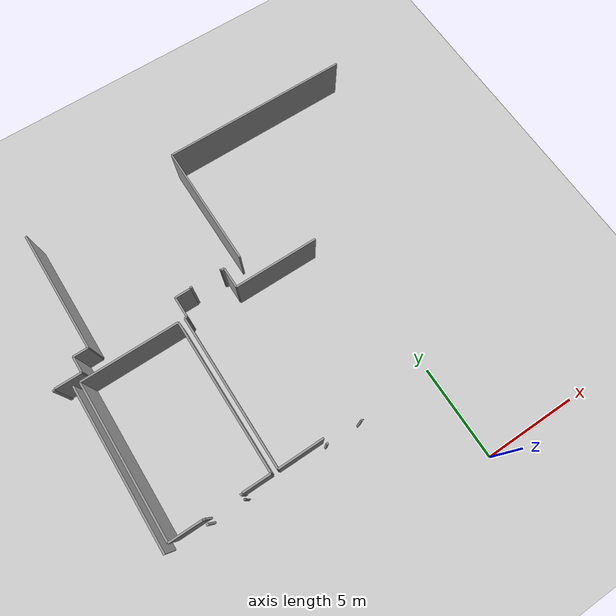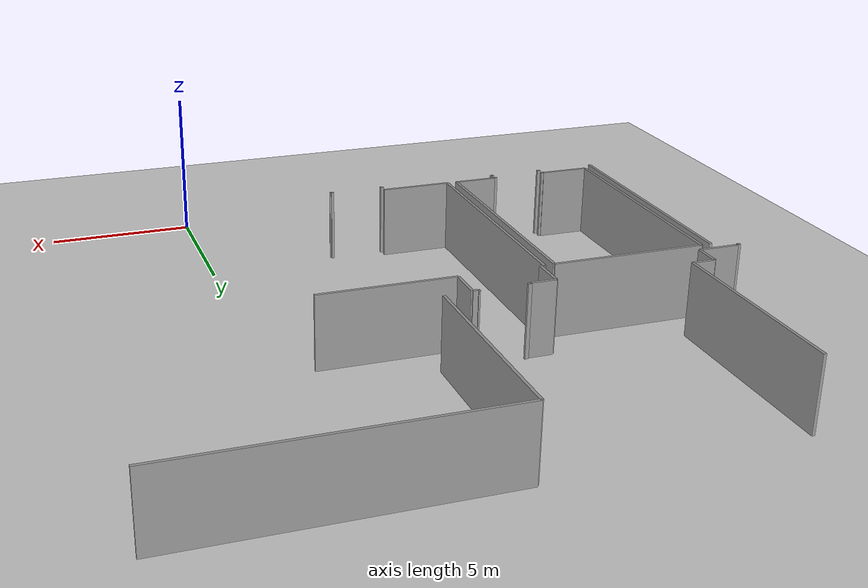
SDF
<sdf version="1.6">
 <world name="default">
  <model name="ground_plane">
   <static>1</static>
   <link name="link">
    <collision name="collision">
     <geometry><plane><normal>0 0 1</normal><size>100 100</size></plane></geometry>
     <surface><friction><ode><mu>100</mu><mu2>50</mu2></ode></friction></surface>
    </collision>
    <visual name="visual">
     <cast_shadows>0</cast_shadows>
     <geometry><plane><normal>0 0 1</normal><size>100 100</size></plane></geometry>
     <material>
      <script><uri>file://media/materials/scripts/gazebo.material</uri><name>Gazebo/Grey</name></script>
     </material>
    </visual>
   </link>
  </model>
  <model name="0510032259_A_40_1_101">
   <static>1</static>
   <link name="Wall_49">
    <collision name="Wall_49_Collision">
     <geometry><box><size>8.51570936718 0.1 2.5</size></box></geometry>
     <pose>4.25785468359 0 1.25 0 0 0</pose>
    </collision>
    <visual name="Wall_49_Visual">
     <pose>4.25785468359 0 1.25 0 0 0</pose>
     <geometry><box><size>8.51570936718 0.1 2.5</size></box></geometry>
     <material>
      <script><uri>file://media/materials/scripts/gazebo.material</uri><name>Gazebo/Grey</name></script>
      <ambient>1 1 1 1</ambient>
     </material>
    </visual>
    <pose>15.5409027963 -7.93866168642 0 0 0 -1.57079632679</pose>
   </link>
   <link name="Wall_52">
    <collision name="Wall_52_Collision">
     <geometry><box><size>0.115612811424 0.1 2.5</size></box></geometry>
     <pose>0.057806405712 0 1.25 0 0 0</pose>
    </collision>
    <visual name="Wall_52_Visual">
     <pose>0.057806405712 0 1.25 0 0 0</pose>
     <geometry><box><size>0.115612811424 0.1 2.5</size></box></geometry>
     <material>
      <script><uri>file://media/materials/scripts/gazebo.material</uri><name>Gazebo/Grey</name></script>
      <ambient>1 1 1 1</ambient>
     </material>
    </visual>
    <pose>17.6101180267 -16.4208306336 0 0 0 0.0</pose>
   </link>
   <link name="Wall_53">
    <collision name="Wall_53_Collision">
     <geometry><box><size>0.0621260052597 0.1 2.5</size></box></geometry>
     <pose>0.0310630026299 0 1.25 0 0 0</pose>
    </collision>
    <visual name="Wall_53_Visual">
     <pose>0.0310630026299 0 1.25 0 0 0</pose>
     <geometry><box><size>0.0621260052597 0.1 2.5</size></box></geometry>
     <material>
      <script><uri>file://media/materials/scripts/gazebo.material</uri><name>Gazebo/Grey</name></script>
      <ambient>1 1 1 1</ambient>
     </material>
    </visual>
    <pose>19.4849512775 -16.4208306336 0 0 0 0.0</pose>
   </link>
   <link name="Wall_54">
    <collision name="Wall_54_Collision">
     <geometry><box><size>0.03658954911 0.1 2.5</size></box></geometry>
     <pose>0.018294774555 0 1.25 0 0 0</pose>
    </collision>
    <visual name="Wall_54_Visual">
     <pose>0.018294774555 0 1.25 0 0 0</pose>
     <geometry><box><size>0.03658954911 0.1 2.5</size></box></geometry>
     <material>
      <script><uri>file://media/materials/scripts/gazebo.material</uri><name>Gazebo/Grey</name></script>
      <ambient>1 1 1 1</ambient>
     </material>
    </visual>
    <pose>19.5470772827 -16.4208306336 0 0 0 -1.57079632679</pose>
   </link>
   <link name="Wall_57">
    <collision name="Wall_57_Collision">
     <geometry><box><size>0.103797436191 0.1 2.5</size></box></geometry>
     <pose>0.0518987180953 0 1.25 0 0 0</pose>
    </collision>
    <visual name="Wall_57_Visual">
     <pose>0.0518987180953 0 1.25 0 0 0</pose>
     <geometry><box><size>0.103797436191 0.1 2.5</size></box></geometry>
     <material>
      <script><uri>file://media/materials/scripts/gazebo.material</uri><name>Gazebo/Grey</name></script>
      <ambient>1 1 1 1</ambient>
     </material>
    </visual>
    <pose>23.7804118865 -16.419306069 0 0 0 0.0</pose>
   </link>
   <link name="Wall_58">
    <collision name="Wall_58_Collision">
     <geometry><box><size>0.0910927316385 0.1 2.5</size></box></geometry>
     <pose>0.0455463658193 0 1.25 0 0 0</pose>
    </collision>
    <visual name="Wall_58_Visual">
     <pose>0.0455463658193 0 1.25 0 0 0</pose>
     <geometry><box><size>0.0910927316385 0.1 2.5</size></box></geometry>
     <material>
      <script><uri>file://media/materials/scripts/gazebo.material</uri><name>Gazebo/Grey</name></script>
      <ambient>1 1 1 1</ambient>
     </material>
    </visual>
    <pose>25.6436838561 -16.419306069 0 0 0 0.0</pose>
   </link>
   <link name="Wall_59">
    <collision name="Wall_59_Collision">
     <geometry><box><size>0.036081360928 0.1 2.5</size></box></geometry>
     <pose>0.018040680464 0 1.25 0 0 0</pose>
    </collision>
    <visual name="Wall_59_Visual">
     <pose>0.018040680464 0 1.25 0 0 0</pose>
     <geometry><box><size>0.036081360928 0.1 2.5</size></box></geometry>
     <material>
      <script><uri>file://media/materials/scripts/gazebo.material</uri><name>Gazebo/Grey</name></script>
      <ambient>1 1 1 1</ambient>
     </material>
    </visual>
    <pose>25.7347765878 -16.419306069 0 0 0 -1.57079632679</pose>
   </link>
   <link name="Wall_113">
    <collision name="Wall_113_Collision">
     <geometry><box><size>6.70465373328 0.1 2.5</size></box></geometry>
     <pose>3.35232686664 0 1.25 0 0 0</pose>
    </collision>
    <visual name="Wall_113_Visual">
     <pose>3.35232686664 0 1.25 0 0 0</pose>
     <geometry><box><size>6.70465373328 0.1 2.5</size></box></geometry>
     <material>
      <script><uri>file://media/materials/scripts/gazebo.material</uri><name>Gazebo/Grey</name></script>
      <ambient>1 1 1 1</ambient>
     </material>
    </visual>
    <pose>16.9332113682 -0.00940148136855 0 0 0 -1.57079632679</pose>
   </link>
   <link name="Wall_114">
    <collision name="Wall_114_Collision">
     <geometry><box><size>0.775876306996 0.1 2.5</size></box></geometry>
     <pose>0.387938153498 0 1.25 0 0 0</pose>
    </collision>
    <visual name="Wall_114_Visual">
     <pose>0.387938153498 0 1.25 0 0 0</pose>
     <geometry><box><size>0.775876306996 0.1 2.5</size></box></geometry>
     <material>
      <script><uri>file://media/materials/scripts/gazebo.material</uri><name>Gazebo/Grey</name></script>
      <ambient>1 1 1 1</ambient>
     </material>
    </visual>
    <pose>16.9332113682 -6.71405521465 0 0 0 3.14159265359</pose>
   </link>
   <link name="Wall_115">
    <collision name="Wall_115_Collision">
     <geometry><box><size>0.879165555005 0.1 2.5</size></box></geometry>
     <pose>0.439582777503 0 1.25 0 0 0</pose>
    </collision>
    <visual name="Wall_115_Visual">
     <pose>0.439582777503 0 1.25 0 0 0</pose>
     <geometry><box><size>0.879165555005 0.1 2.5</size></box></geometry>
     <material>
      <script><uri>file://media/materials/scripts/gazebo.material</uri><name>Gazebo/Grey</name></script>
      <ambient>1 1 1 1</ambient>
     </material>
    </visual>
    <pose>16.1573350612 -6.71405521465 0 0 0 -1.57079632679</pose>
   </link>
   <link name="Wall_116">
    <collision name="Wall_116_Collision">
     <geometry><box><size>1.38621031368 0.1 2.5</size></box></geometry>
     <pose>0.69310515684 0 1.25 0 0 0</pose>
    </collision>
    <visual name="Wall_116_Visual">
     <pose>0.69310515684 0 1.25 0 0 0</pose>
     <geometry><box><size>1.38621031368 0.1 2.5</size></box></geometry>
     <material>
      <script><uri>file://media/materials/scripts/gazebo.material</uri><name>Gazebo/Grey</name></script>
      <ambient>1 1 1 1</ambient>
     </material>
    </visual>
    <pose>16.1573350612 -7.59322076965 0 0 0 3.14159265359</pose>
   </link>
   <link name="Wall_117">
    <collision name="Wall_117_Collision">
     <geometry><box><size>0.0442123718413 0.1 2.5</size></box></geometry>
     <pose>0.0221061859206 0 1.25 0 0 0</pose>
    </collision>
    <visual name="Wall_117_Visual">
     <pose>0.0221061859206 0 1.25 0 0 0</pose>
     <geometry><box><size>0.0442123718413 0.1 2.5</size></box></geometry>
     <material>
      <script><uri>file://media/materials/scripts/gazebo.material</uri><name>Gazebo/Grey</name></script>
      <ambient>1 1 1 1</ambient>
     </material>
    </visual>
    <pose>14.7711247475 -7.59322076965 0 0 0 -1.57079632679</pose>
   </link>
   <link name="Wall_118">
    <collision name="Wall_118_Collision">
     <geometry><box><size>0.118661940517 0.1 2.5</size></box></geometry>
     <pose>0.0593309702583 0 1.25 0 0 0</pose>
    </collision>
    <visual name="Wall_118_Visual">
     <pose>0.0593309702583 0 1.25 0 0 0</pose>
     <geometry><box><size>0.118661940517 0.1 2.5</size></box></geometry>
     <material>
      <script><uri>file://media/materials/scripts/gazebo.material</uri><name>Gazebo/Grey</name></script>
      <ambient>1 1 1 1</ambient>
     </material>
    </visual>
    <pose>14.7711247475 -7.63743314149 0 0 0 3.14159265359</pose>
   </link>
   <link name="Wall_121">
    <collision name="Wall_121_Collision">
     <geometry><box><size>8.18640342519 0.1 2.5</size></box></geometry>
     <pose>4.09320171259 0 1.25 0 0 0</pose>
    </collision>
    <visual name="Wall_121_Visual">
     <pose>4.09320171259 0 1.25 0 0 0</pose>
     <geometry><box><size>8.18640342519 0.1 2.5</size></box></geometry>
     <material>
      <script><uri>file://media/materials/scripts/gazebo.material</uri><name>Gazebo/Grey</name></script>
      <ambient>1 1 1 1</ambient>
     </material>
    </visual>
    <pose>15.8836757251 -16.1326879343 0 0 0 1.57079632679</pose>
   </link>
   <link name="Wall_122">
    <collision name="Wall_122_Collision">
     <geometry><box><size>5.1722122702 0.1 2.5</size></box></geometry>
     <pose>2.5861061351 0 1.25 0 0 0</pose>
    </collision>
    <visual name="Wall_122_Visual">
     <pose>2.5861061351 0 1.25 0 0 0</pose>
     <geometry><box><size>5.1722122702 0.1 2.5</size></box></geometry>
     <material>
      <script><uri>file://media/materials/scripts/gazebo.material</uri><name>Gazebo/Grey</name></script>
      <ambient>1 1 1 1</ambient>
     </material>
    </visual>
    <pose>15.8836757251 -7.94628450915 0 0 0 0.0</pose>
   </link>
   <link name="Wall_123">
    <collision name="Wall_123_Collision">
     <geometry><box><size>8.18564114292 0.1 2.5</size></box></geometry>
     <pose>4.09282057146 0 1.25 0 0 0</pose>
    </collision>
    <visual name="Wall_123_Visual">
     <pose>4.09282057146 0 1.25 0 0 0</pose>
     <geometry><box><size>8.18564114292 0.1 2.5</size></box></geometry>
     <material>
      <script><uri>file://media/materials/scripts/gazebo.material</uri><name>Gazebo/Grey</name></script>
      <ambient>1 1 1 1</ambient>
     </material>
    </visual>
    <pose>21.0558879953 -7.94628450915 0 0 0 -1.57079632679</pose>
   </link>
   <link name="Wall_124">
    <collision name="Wall_124_Collision">
     <geometry><box><size>1.48378244464 0.1 2.5</size></box></geometry>
     <pose>0.74189122232 0 1.25 0 0 0</pose>
    </collision>
    <visual name="Wall_124_Visual">
     <pose>0.74189122232 0 1.25 0 0 0</pose>
     <geometry><box><size>1.48378244464 0.1 2.5</size></box></geometry>
     <material>
      <script><uri>file://media/materials/scripts/gazebo.material</uri><name>Gazebo/Grey</name></script>
      <ambient>1 1 1 1</ambient>
     </material>
    </visual>
    <pose>21.0558879953 -16.1319256521 0 0 0 3.14159265359</pose>
   </link>
   <link name="Wall_125">
    <collision name="Wall_125_Collision">
     <geometry><box><size>0.0303642438795 0.1 2.5</size></box></geometry>
     <pose>0.0151821219398 0 1.25 0 0 0</pose>
    </collision>
    <visual name="Wall_125_Visual">
     <pose>0.0151821219398 0 1.25 0 0 0</pose>
     <geometry><box><size>0.0303642438795 0.1 2.5</size></box></geometry>
     <material>
      <script><uri>file://media/materials/scripts/gazebo.material</uri><name>Gazebo/Grey</name></script>
      <ambient>1 1 1 1</ambient>
     </material>
    </visual>
    <pose>19.5721055507 -16.1319256521 0 0 0 -1.57079632679</pose>
   </link>
   <link name="Wall_126">
    <collision name="Wall_126_Collision">
     <geometry><box><size>0.113961199832 0.1 2.5</size></box></geometry>
     <pose>0.0569805999162 0 1.25 0 0 0</pose>
    </collision>
    <visual name="Wall_126_Visual">
     <pose>0.0569805999162 0 1.25 0 0 0</pose>
     <geometry><box><size>0.113961199832 0.1 2.5</size></box></geometry>
     <material>
      <script><uri>file://media/materials/scripts/gazebo.material</uri><name>Gazebo/Grey</name></script>
      <ambient>1 1 1 1</ambient>
     </material>
    </visual>
    <pose>19.5721055507 -16.1622898959 0 0 0 3.14159265359</pose>
   </link>
   <link name="Wall_127">
    <collision name="Wall_127_Collision">
     <geometry><box><size>0.0866460850453 0.1 2.5</size></box></geometry>
     <pose>0.0433230425227 0 1.25 0 0 0</pose>
    </collision>
    <visual name="Wall_127_Visual">
     <pose>0.0433230425227 0 1.25 0 0 0</pose>
     <geometry><box><size>0.0866460850453 0.1 2.5</size></box></geometry>
     <material>
      <script><uri>file://media/materials/scripts/gazebo.material</uri><name>Gazebo/Grey</name></script>
      <ambient>1 1 1 1</ambient>
     </material>
    </visual>
    <pose>17.6824077956 -16.1622898959 0 0 0 3.14159265359</pose>
   </link>
   <link name="Wall_128">
    <collision name="Wall_128_Collision">
     <geometry><box><size>0.0195652450102 0.1 2.5</size></box></geometry>
     <pose>0.00978262250511 0 1.25 0 0 0</pose>
    </collision>
    <visual name="Wall_128_Visual">
     <pose>0.00978262250511 0 1.25 0 0 0</pose>
     <geometry><box><size>0.0195652450102 0.1 2.5</size></box></geometry>
     <material>
      <script><uri>file://media/materials/scripts/gazebo.material</uri><name>Gazebo/Grey</name></script>
      <ambient>1 1 1 1</ambient>
     </material>
    </visual>
    <pose>17.5957617106 -16.1622898959 0 0 0 1.57079632679</pose>
   </link>
   <link name="Wall_129">
    <collision name="Wall_129_Collision">
     <geometry><box><size>1.71211540418 0.1 2.5</size></box></geometry>
     <pose>0.856057702089 0 1.25 0 0 0</pose>
    </collision>
    <visual name="Wall_129_Visual">
     <pose>0.856057702089 0 1.25 0 0 0</pose>
     <geometry><box><size>1.71211540418 0.1 2.5</size></box></geometry>
     <material>
      <script><uri>file://media/materials/scripts/gazebo.material</uri><name>Gazebo/Grey</name></script>
      <ambient>1 1 1 1</ambient>
     </material>
    </visual>
    <pose>17.5957617106 -16.1427246509 0 0 0 3.13573044707</pose>
   </link>
   <link name="Wall_130">
    <collision name="Wall_130_Collision">
     <geometry><box><size>8.20241135292 0.1 2.5</size></box></geometry>
     <pose>4.10120567646 0 1.25 0 0 0</pose>
    </collision>
    <visual name="Wall_130_Visual">
     <pose>4.10120567646 0 1.25 0 0 0</pose>
     <geometry><box><size>8.20241135292 0.1 2.5</size></box></geometry>
     <material>
      <script><uri>file://media/materials/scripts/gazebo.material</uri><name>Gazebo/Grey</name></script>
      <ambient>1 1 1 1</ambient>
     </material>
    </visual>
    <pose>21.4059026057 -16.1408189453 0 0 0 1.57079632679</pose>
   </link>
   <link name="Wall_131">
    <collision name="Wall_131_Collision">
     <geometry><box><size>0.127555233703 0.1 2.5</size></box></geometry>
     <pose>0.0637776168515 0 1.25 0 0 0</pose>
    </collision>
    <visual name="Wall_131_Visual">
     <pose>0.0637776168515 0 1.25 0 0 0</pose>
     <geometry><box><size>0.127555233703 0.1 2.5</size></box></geometry>
     <material>
      <script><uri>file://media/materials/scripts/gazebo.material</uri><name>Gazebo/Grey</name></script>
      <ambient>1 1 1 1</ambient>
     </material>
    </visual>
    <pose>21.4059026057 -7.93840759233 0 0 0 0.0</pose>
   </link>
   <link name="Wall_132">
    <collision name="Wall_132_Collision">
     <geometry><box><size>1.12970232877 0.1 2.5</size></box></geometry>
     <pose>0.564851164386 0 1.25 0 0 0</pose>
    </collision>
    <visual name="Wall_132_Visual">
     <pose>0.564851164386 0 1.25 0 0 0</pose>
     <geometry><box><size>1.12970232877 0.1 2.5</size></box></geometry>
     <material>
      <script><uri>file://media/materials/scripts/gazebo.material</uri><name>Gazebo/Grey</name></script>
      <ambient>1 1 1 1</ambient>
     </material>
    </visual>
    <pose>21.5334578394 -7.93840759233 0 0 0 1.57079632679</pose>
   </link>
   <link name="Wall_133">
    <collision name="Wall_133_Collision">
     <geometry><box><size>0.834826136118 0.1 2.5</size></box></geometry>
     <pose>0.417413068059 0 1.25 0 0 0</pose>
    </collision>
    <visual name="Wall_133_Visual">
     <pose>0.417413068059 0 1.25 0 0 0</pose>
     <geometry><box><size>0.834826136118 0.1 2.5</size></box></geometry>
     <material>
      <script><uri>file://media/materials/scripts/gazebo.material</uri><name>Gazebo/Grey</name></script>
      <ambient>1 1 1 1</ambient>
     </material>
    </visual>
    <pose>21.5334578394 -6.80870526356 0 0 0 0.0</pose>
   </link>
   <link name="Wall_134">
    <collision name="Wall_134_Collision">
     <geometry><box><size>0.0414173368398 0.1 2.5</size></box></geometry>
     <pose>0.0207086684199 0 1.25 0 0 0</pose>
    </collision>
    <visual name="Wall_134_Visual">
     <pose>0.0207086684199 0 1.25 0 0 0</pose>
     <geometry><box><size>0.0414173368398 0.1 2.5</size></box></geometry>
     <material>
      <script><uri>file://media/materials/scripts/gazebo.material</uri><name>Gazebo/Grey</name></script>
      <ambient>1 1 1 1</ambient>
     </material>
    </visual>
    <pose>22.3682839756 -6.80870526356 0 0 0 1.57079632679</pose>
   </link>
   <link name="Wall_135">
    <collision name="Wall_135_Collision">
     <geometry><box><size>0.120440599154 0.1 2.5</size></box></geometry>
     <pose>0.0602202995769 0 1.25 0 0 0</pose>
    </collision>
    <visual name="Wall_135_Visual">
     <pose>0.0602202995769 0 1.25 0 0 0</pose>
     <geometry><box><size>0.120440599154 0.1 2.5</size></box></geometry>
     <material>
      <script><uri>file://media/materials/scripts/gazebo.material</uri><name>Gazebo/Grey</name></script>
      <ambient>1 1 1 1</ambient>
     </material>
    </visual>
    <pose>22.3682839756 -6.76728792672 0 0 0 0.0</pose>
   </link>
   <link name="Wall_136">
    <collision name="Wall_136_Collision">
     <geometry><box><size>0.0539949943464 0.1 2.5</size></box></geometry>
     <pose>0.0269974971732 0 1.25 0 0 0</pose>
    </collision>
    <visual name="Wall_136_Visual">
     <pose>0.0269974971732 0 1.25 0 0 0</pose>
     <geometry><box><size>0.0539949943464 0.1 2.5</size></box></geometry>
     <material>
      <script><uri>file://media/materials/scripts/gazebo.material</uri><name>Gazebo/Grey</name></script>
      <ambient>1 1 1 1</ambient>
     </material>
    </visual>
    <pose>24.0378092007 -6.76728792672 0 0 0 0.0</pose>
   </link>
   <link name="Wall_137">
    <collision name="Wall_137_Collision">
     <geometry><box><size>0.0414173368398 0.1 2.5</size></box></geometry>
     <pose>0.0207086684199 0 1.25 0 0 0</pose>
    </collision>
    <visual name="Wall_137_Visual">
     <pose>0.0207086684199 0 1.25 0 0 0</pose>
     <geometry><box><size>0.0414173368398 0.1 2.5</size></box></geometry>
     <material>
      <script><uri>file://media/materials/scripts/gazebo.material</uri><name>Gazebo/Grey</name></script>
      <ambient>1 1 1 1</ambient>
     </material>
    </visual>
    <pose>24.0918041951 -6.76728792672 0 0 0 -1.57079632679</pose>
   </link>
   <link name="Wall_138">
    <collision name="Wall_138_Collision">
     <geometry><box><size>0.166177535541 0.1 2.5</size></box></geometry>
     <pose>0.0830887677707 0 1.25 0 0 0</pose>
    </collision>
    <visual name="Wall_138_Visual">
     <pose>0.0830887677707 0 1.25 0 0 0</pose>
     <geometry><box><size>0.166177535541 0.1 2.5</size></box></geometry>
     <material>
      <script><uri>file://media/materials/scripts/gazebo.material</uri><name>Gazebo/Grey</name></script>
      <ambient>1 1 1 1</ambient>
     </material>
    </visual>
    <pose>24.0918041951 -6.80870526356 0 0 0 0.0</pose>
   </link>
   <link name="Wall_139">
    <collision name="Wall_139_Collision">
     <geometry><box><size>1.12995642286 0.1 2.5</size></box></geometry>
     <pose>0.564978211432 0 1.25 0 0 0</pose>
    </collision>
    <visual name="Wall_139_Visual">
     <pose>0.564978211432 0 1.25 0 0 0</pose>
     <geometry><box><size>1.12995642286 0.1 2.5</size></box></geometry>
     <material>
      <script><uri>file://media/materials/scripts/gazebo.material</uri><name>Gazebo/Grey</name></script>
      <ambient>1 1 1 1</ambient>
     </material>
    </visual>
    <pose>24.2579817306 -6.80870526356 0 0 0 -1.57079632679</pose>
   </link>
   <link name="Wall_140">
    <collision name="Wall_140_Collision">
     <geometry><box><size>4.54777604147 0.1 2.5</size></box></geometry>
     <pose>2.27388802073 0 1.25 0 0 0</pose>
    </collision>
    <visual name="Wall_140_Visual">
     <pose>2.27388802073 0 1.25 0 0 0</pose>
     <geometry><box><size>4.54777604147 0.1 2.5</size></box></geometry>
     <material>
      <script><uri>file://media/materials/scripts/gazebo.material</uri><name>Gazebo/Grey</name></script>
      <ambient>1 1 1 1</ambient>
     </material>
    </visual>
    <pose>24.2579817306 -7.93866168642 0 0 0 0.0</pose>
   </link>
   <link name="Wall_146">
    <collision name="Wall_146_Collision">
     <geometry><box><size>2.42850669777 0.1 2.5</size></box></geometry>
     <pose>1.21425334888 0 1.25 0 0 0</pose>
    </collision>
    <visual name="Wall_146_Visual">
     <pose>1.21425334888 0 1.25 0 0 0</pose>
     <geometry><box><size>2.42850669777 0.1 2.5</size></box></geometry>
     <material>
      <script><uri>file://media/materials/scripts/gazebo.material</uri><name>Gazebo/Grey</name></script>
      <ambient>1 1 1 1</ambient>
     </material>
    </visual>
    <pose>23.8344068809 -16.137388675 0 0 0 -3.14018015126</pose>
   </link>
   <link name="Wall_176">
    <collision name="Wall_176_Collision">
     <geometry><box><size>6.71901004942 0.1 2.5</size></box></geometry>
     <pose>3.35950502471 0 1.25 0 0 0</pose>
    </collision>
    <visual name="Wall_176_Visual">
     <pose>3.35950502471 0 1.25 0 0 0</pose>
     <geometry><box><size>6.71901004942 0.1 2.5</size></box></geometry>
     <material>
      <script><uri>file://media/materials/scripts/gazebo.material</uri><name>Gazebo/Grey</name></script>
      <ambient>1 1 1 1</ambient>
     </material>
    </visual>
    <pose>25.1946995973 -6.72066166101 0 0 0 1.57079632679</pose>
   </link>
   <link name="Wall_177">
    <collision name="Wall_177_Collision">
     <geometry><box><size>10.2394836808 0.1 2.5</size></box></geometry>
     <pose>5.1197418404 0 1.25 0 0 0</pose>
    </collision>
    <visual name="Wall_177_Visual">
     <pose>5.1197418404 0 1.25 0 0 0</pose>
     <geometry><box><size>10.2394836808 0.1 2.5</size></box></geometry>
     <material>
      <script><uri>file://media/materials/scripts/gazebo.material</uri><name>Gazebo/Grey</name></script>
      <ambient>1 1 1 1</ambient>
     </material>
    </visual>
    <pose>25.1946995973 -0.00165161159178 0 0 0 0.0</pose>
   </link>
   <pose>-30.15 21.0617302537 0 0 0 0</pose>
  </model>
 </world>
</sdf>
